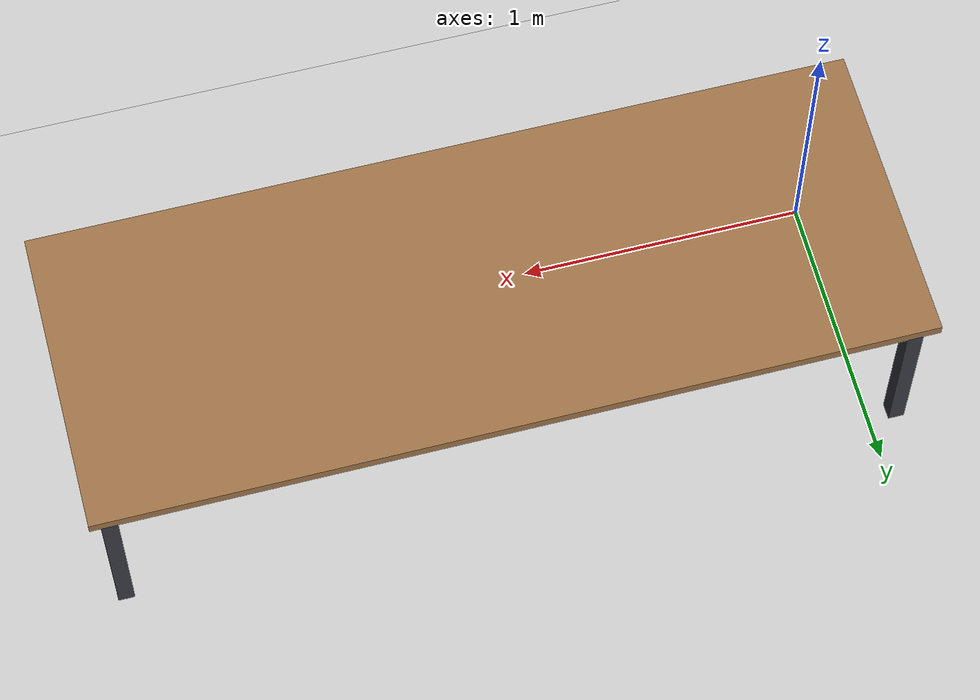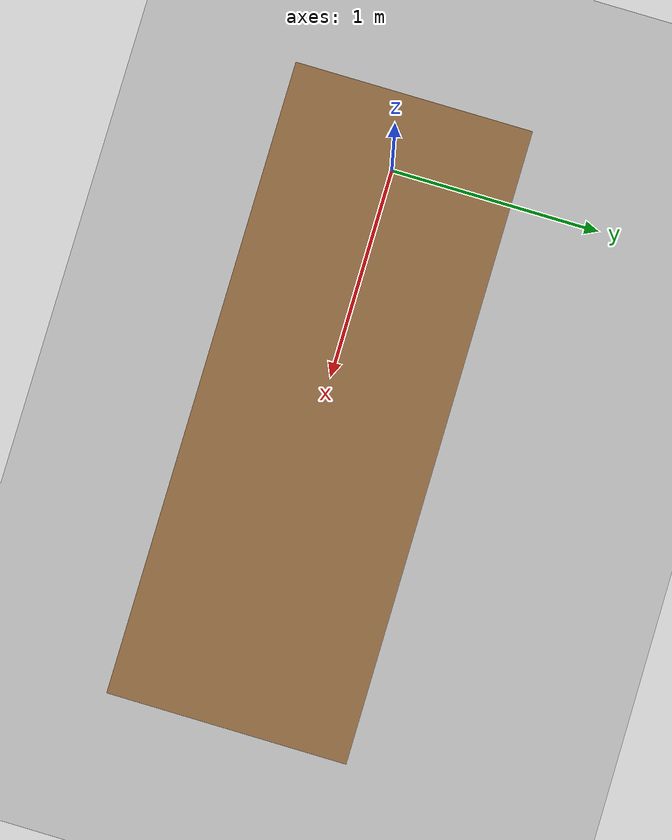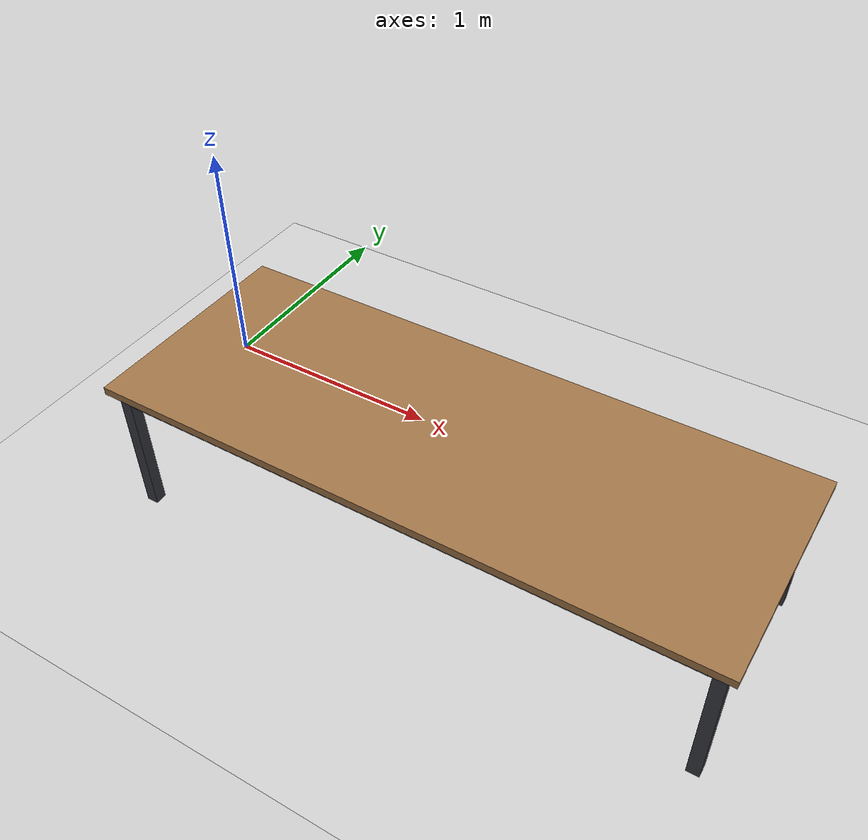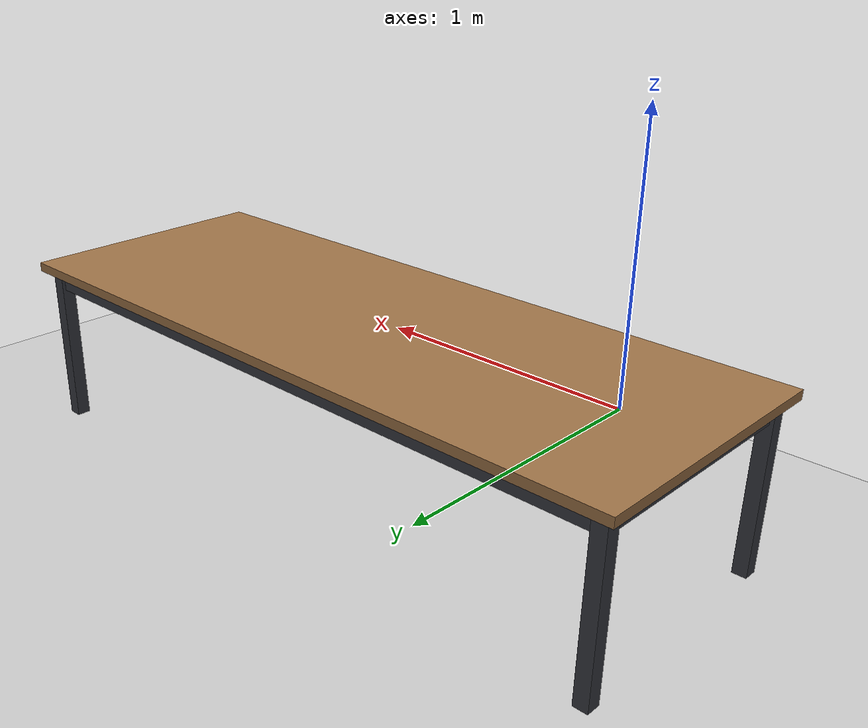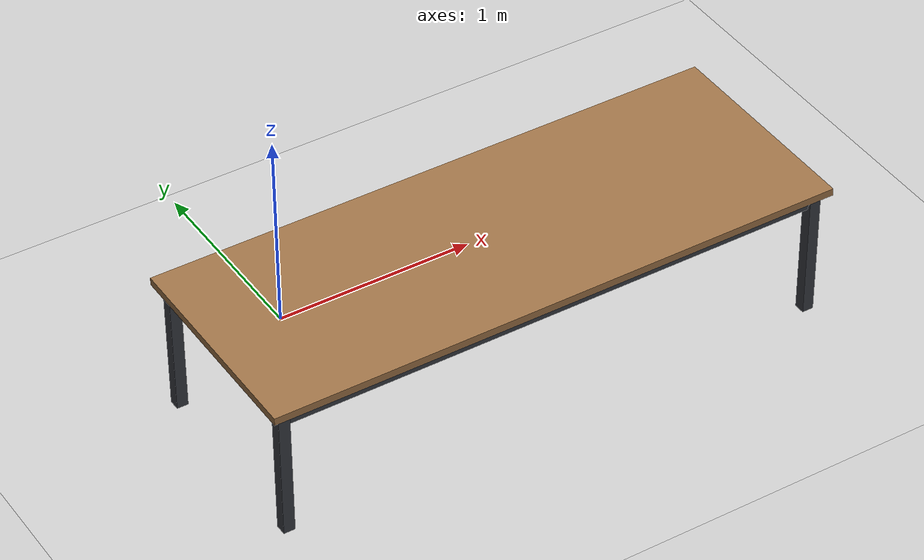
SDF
<?xml version="1.0" ?>
<sdf version="1.6">
  <world name="motus_world">
    <physics name="motus_physics" type="dartsim">
      <max_step_size>0.008</max_step_size>
      <real_time_update_rate>250</real_time_update_rate>
    </physics>
    <plugin
      filename="gz-sim-physics-system"
      name="gz::sim::systems::Physics">
    </plugin>
    <plugin
      filename="gz-sim-user-commands-system"
      name="gz::sim::systems::UserCommands">
    </plugin>
    <plugin
      filename="gz-sim-scene-broadcaster-system"
      name="gz::sim::systems::SceneBroadcaster">
    </plugin>
    <plugin
      filename="gz-sim-contact-system"
      name="gz::sim::systems::Contact">
    </plugin>
    <scene>
      <shadows>false</shadows>
    </scene>
    <light type="directional" name="sun">
      <cast_shadows>False</cast_shadows>
      <pose>0 0 10 0 0 0</pose>
      <diffuse>0.8 0.8 0.8 1</diffuse>
      <specular>0.2 0.2 0.2 1</specular>
      <attenuation>
        <range>1000</range>
        <constant>0.9</constant>
        <linear>0.01</linear>
        <quadratic>0.001</quadratic>
      </attenuation>
      <direction>-0.5 0.1 -0.9</direction>
    </light>
    <model name="ground_plane">
      <static>true</static>
      <pose>0 0 -0.75 0 0 0</pose> <!-- MOTUS-TABLE-FLOOR -->
      <link name="link">
        <collision name="collision">
          <geometry>
            <plane>
              <normal>0 0 1</normal>
              <size>100 100</size>
            </plane>
          </geometry>
        </collision>
        <visual name="visual">
          <geometry>
            <plane>
              <normal>0 0 1</normal>
              <size>100 100</size>
            </plane>
          </geometry>
          <material>
            <ambient>0.8 0.8 0.8 1</ambient>
            <diffuse>0.8 0.8 0.8 1</diffuse>
            <specular>0.8 0.8 0.8 1</specular>
          </material>
        </visual>
      </link>
    </model>

    <!-- MOTUS-TABLE-BEGIN (managed by `motus world table`; edit outside this block) -->
    <model name="motus_table">
      <static>true</static>
      <pose>1.1625 0 0 0 0 0</pose>
      <link name="link">
      <collision name="top_collision">
        <pose>0 0 -0.02 0 0 0</pose>
        <geometry><box><size>3.05 1.15 0.04</size></box></geometry>
          <surface><friction><ode><mu>1.0</mu><mu2>1.0</mu2></ode></friction></surface>
      </collision>
      <visual name="top_visual">
        <pose>0 0 -0.02 0 0 0</pose>
        <geometry><box><size>3.05 1.15 0.04</size></box></geometry>
        <material>
          <ambient>0.62 0.45 0.28 1</ambient>
          <diffuse>0.62 0.45 0.28 1</diffuse>
          <specular>0.1 0.1 0.1 1</specular>
        </material>
      </visual>
      <collision name="leg1_collision">
        <pose>1.455 0.505 -0.395 0 0 0</pose>
        <geometry><box><size>0.06 0.06 0.71</size></box></geometry>
      </collision>
      <visual name="leg1_visual">
        <pose>1.455 0.505 -0.395 0 0 0</pose>
        <geometry><box><size>0.06 0.06 0.71</size></box></geometry>
        <material>
          <ambient>0.22 0.23 0.26 1</ambient>
          <diffuse>0.22 0.23 0.26 1</diffuse>
          <specular>0.1 0.1 0.1 1</specular>
        </material>
      </visual>
      <collision name="leg2_collision">
        <pose>1.455 -0.505 -0.395 0 0 0</pose>
        <geometry><box><size>0.06 0.06 0.71</size></box></geometry>
      </collision>
      <visual name="leg2_visual">
        <pose>1.455 -0.505 -0.395 0 0 0</pose>
        <geometry><box><size>0.06 0.06 0.71</size></box></geometry>
        <material>
          <ambient>0.22 0.23 0.26 1</ambient>
          <diffuse>0.22 0.23 0.26 1</diffuse>
          <specular>0.1 0.1 0.1 1</specular>
        </material>
      </visual>
      <collision name="leg3_collision">
        <pose>-1.455 0.505 -0.395 0 0 0</pose>
        <geometry><box><size>0.06 0.06 0.71</size></box></geometry>
      </collision>
      <visual name="leg3_visual">
        <pose>-1.455 0.505 -0.395 0 0 0</pose>
        <geometry><box><size>0.06 0.06 0.71</size></box></geometry>
        <material>
          <ambient>0.22 0.23 0.26 1</ambient>
          <diffuse>0.22 0.23 0.26 1</diffuse>
          <specular>0.1 0.1 0.1 1</specular>
        </material>
      </visual>
      <collision name="leg4_collision">
        <pose>-1.455 -0.505 -0.395 0 0 0</pose>
        <geometry><box><size>0.06 0.06 0.71</size></box></geometry>
      </collision>
      <visual name="leg4_visual">
        <pose>-1.455 -0.505 -0.395 0 0 0</pose>
        <geometry><box><size>0.06 0.06 0.71</size></box></geometry>
        <material>
          <ambient>0.22 0.23 0.26 1</ambient>
          <diffuse>0.22 0.23 0.26 1</diffuse>
          <specular>0.1 0.1 0.1 1</specular>
        </material>
      </visual>
      <collision name="rail_front_collision">
        <pose>0 0.505 -0.08 0 0 0</pose>
        <geometry><box><size>2.91 0.03 0.08</size></box></geometry>
      </collision>
      <visual name="rail_front_visual">
        <pose>0 0.505 -0.08 0 0 0</pose>
        <geometry><box><size>2.91 0.03 0.08</size></box></geometry>
        <material>
          <ambient>0.22 0.23 0.26 1</ambient>
          <diffuse>0.22 0.23 0.26 1</diffuse>
          <specular>0.1 0.1 0.1 1</specular>
        </material>
      </visual>
      <collision name="rail_back_collision">
        <pose>0 -0.505 -0.08 0 0 0</pose>
        <geometry><box><size>2.91 0.03 0.08</size></box></geometry>
      </collision>
      <visual name="rail_back_visual">
        <pose>0 -0.505 -0.08 0 0 0</pose>
        <geometry><box><size>2.91 0.03 0.08</size></box></geometry>
        <material>
          <ambient>0.22 0.23 0.26 1</ambient>
          <diffuse>0.22 0.23 0.26 1</diffuse>
          <specular>0.1 0.1 0.1 1</specular>
        </material>
      </visual>
      <collision name="rail_left_collision">
        <pose>1.455 0 -0.08 0 0 0</pose>
        <geometry><box><size>0.03 1.01 0.08</size></box></geometry>
      </collision>
      <visual name="rail_left_visual">
        <pose>1.455 0 -0.08 0 0 0</pose>
        <geometry><box><size>0.03 1.01 0.08</size></box></geometry>
        <material>
          <ambient>0.22 0.23 0.26 1</ambient>
          <diffuse>0.22 0.23 0.26 1</diffuse>
          <specular>0.1 0.1 0.1 1</specular>
        </material>
      </visual>
      <collision name="rail_right_collision">
        <pose>-1.455 0 -0.08 0 0 0</pose>
        <geometry><box><size>0.03 1.01 0.08</size></box></geometry>
      </collision>
      <visual name="rail_right_visual">
        <pose>-1.455 0 -0.08 0 0 0</pose>
        <geometry><box><size>0.03 1.01 0.08</size></box></geometry>
        <material>
          <ambient>0.22 0.23 0.26 1</ambient>
          <diffuse>0.22 0.23 0.26 1</diffuse>
          <specular>0.1 0.1 0.1 1</specular>
        </material>
      </visual>
      </link>
    </model>
    <!-- MOTUS-TABLE-END -->
  </world>
</sdf>
